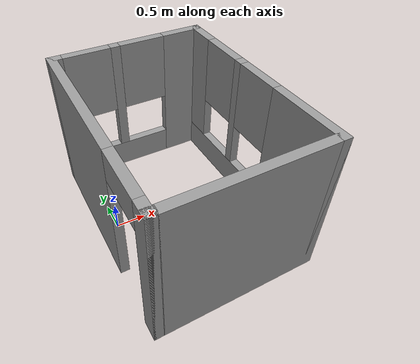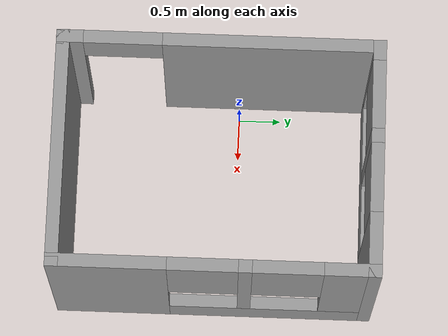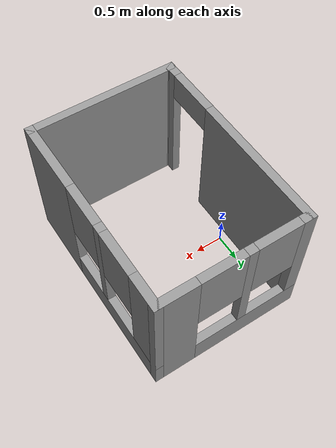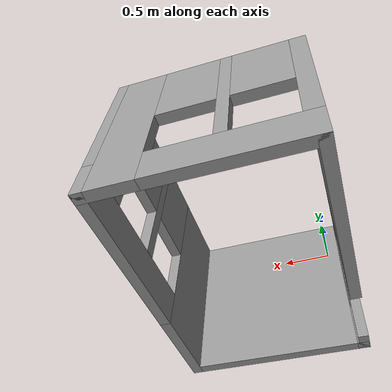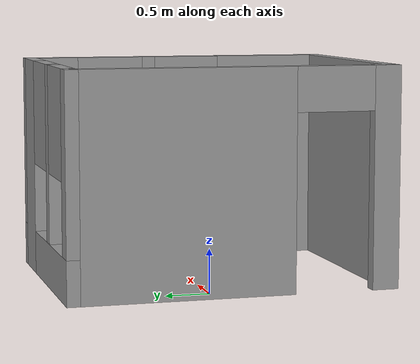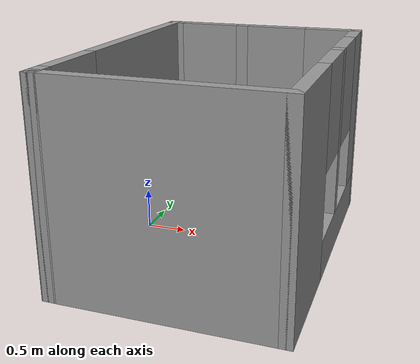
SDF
<?xml version='1.0'?>
<sdf version='1.6'>
  <model name='MK_room'>
    <pose frame=''>1.07 -0.23 0 0 -0 0</pose>
    <link name='Wall_0'>
      <collision name='Wall_0_Collision'>
        <geometry>
          <box>
            <size>2.75 0.15 2.5</size>
          </box>
        </geometry>
        <pose frame=''>0 0 1.25 0 -0 0</pose>
      </collision>
      <visual name='Wall_0_Visual'>
        <pose frame=''>0 0 1.25 0 -0 0</pose>
        <geometry>
          <box>
            <size>2.75 0.15 2.5</size>
          </box>
        </geometry>
        <material>
          <script>
            <uri>file://media/materials/scripts/gazebo.material</uri>
            <name>Gazebo/Grey</name>
          </script>
          <ambient>1 1 1 1</ambient>
        </material>
        <meta>
          <layer>0</layer>
        </meta>
      </visual>
      <pose frame=''>0 -1.8 0 0 -0 0</pose>
    </link>
    <link name='Wall_1'>
      <pose frame=''>1.3 0 0 0 -0 1.5708</pose>
      <visual name='Wall_1_Visual_0'>
        <pose frame=''>-1.19725 0 1.25 0 -0 0</pose>
        <geometry>
          <box>
            <size>1.3555 0.15 2.5</size>
          </box>
        </geometry>
        <material>
          <script>
            <uri>file://media/materials/scripts/gazebo.material</uri>
            <name>Gazebo/Grey</name>
          </script>
          <ambient>1 1 1 1</ambient>
        </material>
        <meta>
          <layer>0</layer>
        </meta>
      </visual>
      <collision name='Wall_1_Collision_0'>
        <geometry>
          <box>
            <size>1.3555 0.15 2.5</size>
          </box>
        </geometry>
        <pose frame=''>-1.19725 0 1.25 0 -0 0</pose>
      </collision>
      <visual name='Wall_1_Visual_1'>
        <pose frame=''>0.67775 0 0.25 0 -0 0</pose>
        <geometry>
          <box>
            <size>2.3945 0.15 0.5</size>
          </box>
        </geometry>
        <material>
          <script>
            <uri>file://media/materials/scripts/gazebo.material</uri>
            <name>Gazebo/Grey</name>
          </script>
          <ambient>1 1 1 1</ambient>
        </material>
        <meta>
          <layer>0</layer>
        </meta>
      </visual>
      <collision name='Wall_1_Collision_1'>
        <geometry>
          <box>
            <size>2.3945 0.15 0.5</size>
          </box>
        </geometry>
        <pose frame=''>0.67775 0 0.25 0 -0 0</pose>
      </collision>
      <visual name='Wall_1_Visual_2'>
        <pose frame=''>0.35775 0 1.5 0 -0 0</pose>
        <geometry>
          <box>
            <size>0.1545 0.15 2</size>
          </box>
        </geometry>
        <material>
          <script>
            <uri>file://media/materials/scripts/gazebo.material</uri>
            <name>Gazebo/Grey</name>
          </script>
          <ambient>1 1 1 1</ambient>
        </material>
        <meta>
          <layer>0</layer>
        </meta>
      </visual>
      <collision name='Wall_1_Collision_2'>
        <geometry>
          <box>
            <size>0.1545 0.15 2</size>
          </box>
        </geometry>
        <pose frame=''>0.35775 0 1.5 0 -0 0</pose>
      </collision>
      <visual name='Wall_1_Visual_3'>
        <pose frame=''>1.555 0 1.5 0 -0 0</pose>
        <geometry>
          <box>
            <size>0.64 0.15 2</size>
          </box>
        </geometry>
        <material>
          <script>
            <uri>file://media/materials/scripts/gazebo.material</uri>
            <name>Gazebo/Grey</name>
          </script>
          <ambient>1 1 1 1</ambient>
        </material>
        <meta>
          <layer>0</layer>
        </meta>
      </visual>
      <collision name='Wall_1_Collision_3'>
        <geometry>
          <box>
            <size>0.64 0.15 2</size>
          </box>
        </geometry>
        <pose frame=''>1.555 0 1.5 0 -0 0</pose>
      </collision>
      <visual name='Wall_1_Visual_4'>
        <pose frame=''>-0.1195 0 1.9 0 -0 0</pose>
        <geometry>
          <box>
            <size>0.8 0.15 1.2</size>
          </box>
        </geometry>
        <material>
          <script>
            <uri>file://media/materials/scripts/gazebo.material</uri>
            <name>Gazebo/Grey</name>
          </script>
          <ambient>1 1 1 1</ambient>
        </material>
        <meta>
          <layer>0</layer>
        </meta>
      </visual>
      <collision name='Wall_1_Collision_4'>
        <geometry>
          <box>
            <size>0.8 0.15 1.2</size>
          </box>
        </geometry>
        <pose frame=''>-0.1195 0 1.9 0 -0 0</pose>
      </collision>
      <visual name='Wall_1_Visual_5'>
        <pose frame=''>0.835 0 1.9 0 -0 0</pose>
        <geometry>
          <box>
            <size>0.8 0.15 1.2</size>
          </box>
        </geometry>
        <material>
          <script>
            <uri>file://media/materials/scripts/gazebo.material</uri>
            <name>Gazebo/Grey</name>
          </script>
          <ambient>1 1 1 1</ambient>
        </material>
        <meta>
          <layer>0</layer>
        </meta>
      </visual>
      <collision name='Wall_1_Collision_5'>
        <geometry>
          <box>
            <size>0.8 0.15 1.2</size>
          </box>
        </geometry>
        <pose frame=''>0.835 0 1.9 0 -0 0</pose>
      </collision>
    </link>
    <link name='Wall_2'>
      <pose frame=''>0 1.8 0 0 -0 3.14159</pose>
      <visual name='Wall_2_Visual_0'>
        <pose frame=''>-1.00025 0 1.25 0 -0 0</pose>
        <geometry>
          <box>
            <size>0.7495 0.15 2.5</size>
          </box>
        </geometry>
        <material>
          <script>
            <uri>file://media/materials/scripts/gazebo.material</uri>
            <name>Gazebo/Grey</name>
          </script>
          <ambient>1 1 1 1</ambient>
        </material>
        <meta>
          <layer>0</layer>
        </meta>
      </visual>
      <collision name='Wall_2_Collision_0'>
        <geometry>
          <box>
            <size>0.7495 0.15 2.5</size>
          </box>
        </geometry>
        <pose frame=''>-1.00025 0 1.25 0 -0 0</pose>
      </collision>
      <visual name='Wall_2_Visual_1'>
        <pose frame=''>0.37475 0 0.25 0 -0 0</pose>
        <geometry>
          <box>
            <size>2.0005 0.15 0.5</size>
          </box>
        </geometry>
        <material>
          <script>
            <uri>file://media/materials/scripts/gazebo.material</uri>
            <name>Gazebo/Grey</name>
          </script>
          <ambient>1 1 1 1</ambient>
        </material>
        <meta>
          <layer>0</layer>
        </meta>
      </visual>
      <collision name='Wall_2_Collision_1'>
        <geometry>
          <box>
            <size>2.0005 0.15 0.5</size>
          </box>
        </geometry>
        <pose frame=''>0.37475 0 0.25 0 -0 0</pose>
      </collision>
      <visual name='Wall_2_Visual_2'>
        <pose frame=''>0.2575 0 1.5 0 -0 0</pose>
        <geometry>
          <box>
            <size>0.166 0.15 2</size>
          </box>
        </geometry>
        <material>
          <script>
            <uri>file://media/materials/scripts/gazebo.material</uri>
            <name>Gazebo/Grey</name>
          </script>
          <ambient>1 1 1 1</ambient>
        </material>
        <meta>
          <layer>0</layer>
        </meta>
      </visual>
      <collision name='Wall_2_Collision_2'>
        <geometry>
          <box>
            <size>0.166 0.15 2</size>
          </box>
        </geometry>
        <pose frame=''>0.2575 0 1.5 0 -0 0</pose>
      </collision>
      <visual name='Wall_2_Visual_3'>
        <pose frame=''>1.25775 0 1.5 0 -0 0</pose>
        <geometry>
          <box>
            <size>0.2345 0.15 2</size>
          </box>
        </geometry>
        <material>
          <script>
            <uri>file://media/materials/scripts/gazebo.material</uri>
            <name>Gazebo/Grey</name>
          </script>
          <ambient>1 1 1 1</ambient>
        </material>
        <meta>
          <layer>0</layer>
        </meta>
      </visual>
      <collision name='Wall_2_Collision_3'>
        <geometry>
          <box>
            <size>0.2345 0.15 2</size>
          </box>
        </geometry>
        <pose frame=''>1.25775 0 1.5 0 -0 0</pose>
      </collision>
      <visual name='Wall_2_Visual_4'>
        <pose frame=''>-0.2255 0 1.9 0 -0 0</pose>
        <geometry>
          <box>
            <size>0.8 0.15 1.2</size>
          </box>
        </geometry>
        <material>
          <script>
            <uri>file://media/materials/scripts/gazebo.material</uri>
            <name>Gazebo/Grey</name>
          </script>
          <ambient>1 1 1 1</ambient>
        </material>
        <meta>
          <layer>0</layer>
        </meta>
      </visual>
      <collision name='Wall_2_Collision_4'>
        <geometry>
          <box>
            <size>0.8 0.15 1.2</size>
          </box>
        </geometry>
        <pose frame=''>-0.2255 0 1.9 0 -0 0</pose>
      </collision>
      <visual name='Wall_2_Visual_5'>
        <pose frame=''>0.7405 0 1.9 0 -0 0</pose>
        <geometry>
          <box>
            <size>0.8 0.15 1.2</size>
          </box>
        </geometry>
        <material>
          <script>
            <uri>file://media/materials/scripts/gazebo.material</uri>
            <name>Gazebo/Grey</name>
          </script>
          <ambient>1 1 1 1</ambient>
        </material>
        <meta>
          <layer>0</layer>
        </meta>
      </visual>
      <collision name='Wall_2_Collision_5'>
        <geometry>
          <box>
            <size>0.8 0.15 1.2</size>
          </box>
        </geometry>
        <pose frame=''>0.7405 0 1.9 0 -0 0</pose>
      </collision>
    </link>
    <link name='Wall_3'>
      <pose frame=''>-1.3 0 0 0 -0 -1.5708</pose>
      <visual name='Wall_3_Visual_0'>
        <pose frame=''>-0.6025 0 1.25 0 -0 0</pose>
        <geometry>
          <box>
            <size>2.545 0.15 2.5</size>
          </box>
        </geometry>
        <material>
          <script>
            <uri>file://media/materials/scripts/gazebo.material</uri>
            <name>Gazebo/Grey</name>
          </script>
          <ambient>1 1 1 1</ambient>
        </material>
        <meta>
          <layer>0</layer>
        </meta>
      </visual>
      <collision name='Wall_3_Collision_0'>
        <geometry>
          <box>
            <size>2.545 0.15 2.5</size>
          </box>
        </geometry>
        <pose frame=''>-0.6025 0 1.25 0 -0 0</pose>
      </collision>
      <visual name='Wall_3_Visual_1'>
        <pose frame=''>1.7225 0 1.25 0 -0 0</pose>
        <geometry>
          <box>
            <size>0.305 0.15 2.5</size>
          </box>
        </geometry>
        <material>
          <script>
            <uri>file://media/materials/scripts/gazebo.material</uri>
            <name>Gazebo/Grey</name>
          </script>
          <ambient>1 1 1 1</ambient>
        </material>
        <meta>
          <layer>0</layer>
        </meta>
      </visual>
      <collision name='Wall_3_Collision_1'>
        <geometry>
          <box>
            <size>0.305 0.15 2.5</size>
          </box>
        </geometry>
        <pose frame=''>1.7225 0 1.25 0 -0 0</pose>
      </collision>
      <visual name='Wall_3_Visual_2'>
        <pose frame=''>1.12 0 2.25 0 -0 0</pose>
        <geometry>
          <box>
            <size>0.9 0.15 0.5</size>
          </box>
        </geometry>
        <material>
          <script>
            <uri>file://media/materials/scripts/gazebo.material</uri>
            <name>Gazebo/Grey</name>
          </script>
          <ambient>1 1 1 1</ambient>
        </material>
        <meta>
          <layer>0</layer>
        </meta>
      </visual>
      <collision name='Wall_3_Collision_2'>
        <geometry>
          <box>
            <size>0.9 0.15 0.5</size>
          </box>
        </geometry>
        <pose frame=''>1.12 0 2.25 0 -0 0</pose>
      </collision>
    </link>
    <link name='Wall_4'>
      <collision name='Wall_4_Collision'>
        <geometry>
          <box>
            <size>0.16 0.15 2.5</size>
          </box>
        </geometry>
        <pose frame=''>0 0 1.25 0 -0 0</pose>
      </collision>
      <visual name='Wall_4_Visual'>
        <pose frame=''>0 0 1.25 0 -0 0</pose>
        <geometry>
          <box>
            <size>0.16 0.15 2.5</size>
          </box>
        </geometry>
        <material>
          <script>
            <uri>file://media/materials/scripts/gazebo.material</uri>
            <name>Gazebo/Grey</name>
          </script>
          <ambient>1 1 1 1</ambient>
        </material>
        <meta>
          <layer>0</layer>
        </meta>
      </visual>
      <pose frame=''>-1.295 -1.8 0 0 -0 0</pose>
    </link>
    <link name='Wall_5'>
      <collision name='Wall_5_Collision'>
        <geometry>
          <box>
            <size>0.16 0.15 2.5</size>
          </box>
        </geometry>
        <pose frame=''>0 0 1.25 0 -0 0</pose>
      </collision>
      <visual name='Wall_5_Visual'>
        <pose frame=''>0 0 1.25 0 -0 0</pose>
        <geometry>
          <box>
            <size>0.16 0.15 2.5</size>
          </box>
        </geometry>
        <material>
          <script>
            <uri>file://media/materials/scripts/gazebo.material</uri>
            <name>Gazebo/Grey</name>
          </script>
          <ambient>1 1 1 1</ambient>
        </material>
        <meta>
          <layer>0</layer>
        </meta>
      </visual>
      <pose frame=''>-1.285 -1.8 0 0 -0 0</pose>
    </link>
    <static>1</static>
  </model>
</sdf>
